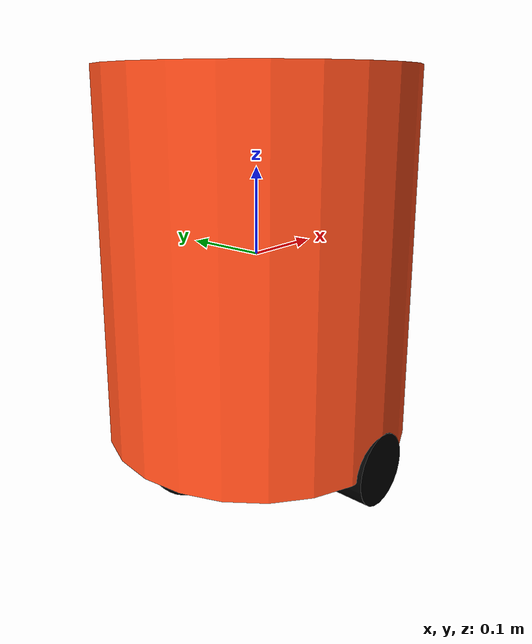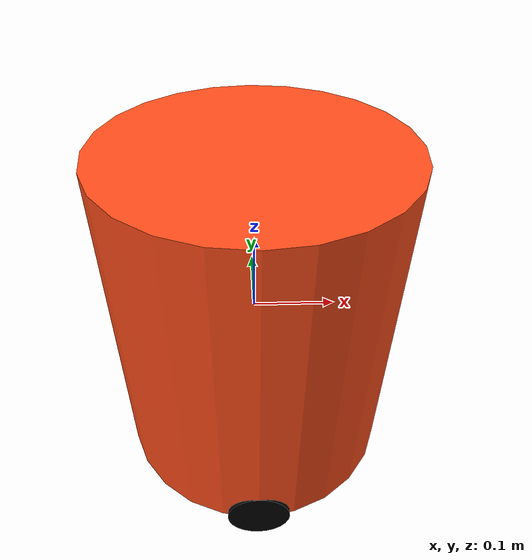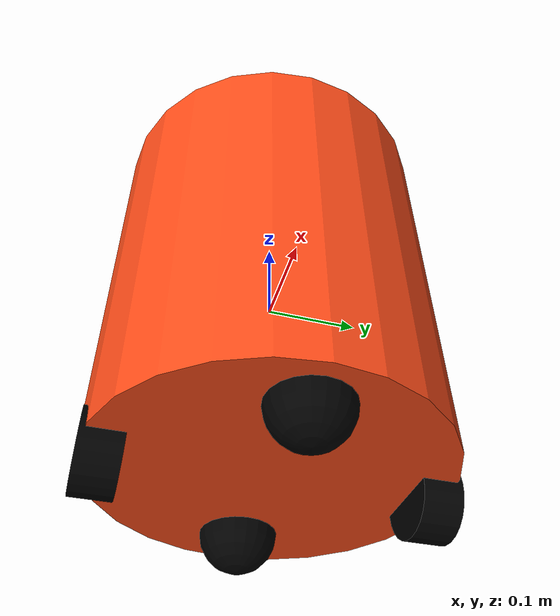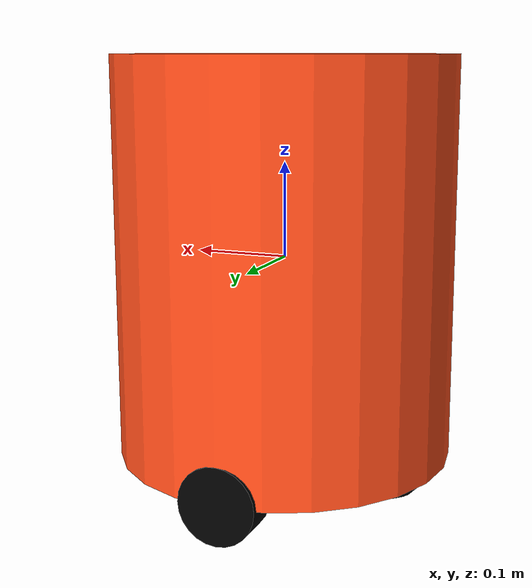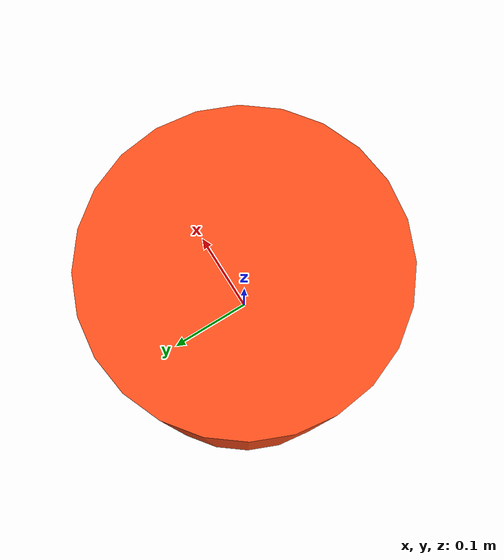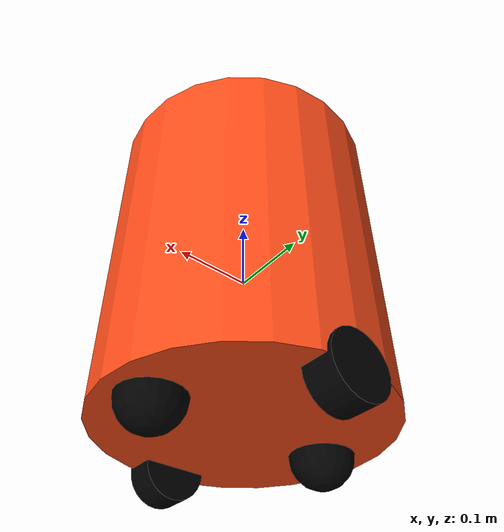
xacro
<?xml version="1.0"?>
<robot xmlns:xacro="http://www.ros.org/wiki/xacro">

	<xacro:include filename="inertial_macros.xacro" />

    <material name="white">
		<color rgba="1 1 1 1" />
    </material>

    <material name="red">
		<color rgba="1 0 0 1" />
    </material>

    <material name="orange">
		<color rgba="1 0.3 0.1 1" />
    </material>

    <material name="blue">
		<color rgba="0.2 0.2 1 1" />
    </material>

    <material name="black">
		<color rgba="0 0 0 1" />
    </material>

    <!-- BASE_LINK -->

    <link name="base_link_slave">
    </link>

	<link name="base_footprint_slave">
	</link>

	<joint name="base_footprint_joint_slave" type="fixed">
		<parent link="base_footprint_slave" />
		<child link="base_link_slave" />
		<origin xyz="0 0 0" rpy="0 0 0" />
	</joint>

    <!-- CHASSIS -->

    <link name="chassis_slave">
    	<visual>
			<origin xyz="0 0 0" />
    	    <geometry>
				<cylinder radius="0.177" length="0.420" />
    	    </geometry>
			<material name="orange" />
    	</visual>
    	<collision>
			<origin xyz="0 0 0" />
    	    <geometry>
				<cylinder radius="0.177" length="0.420" />
    	    </geometry>
    	</collision>
    	<xacro:inertial_cylinder mass="0.5" length="0.420" radius="0.177">
			<origin xyz="0 0 0" rpy="0 0 0" />
    	</xacro:inertial_cylinder>
    </link>

    <gazebo reference="chassis_slave">
        <material>Gazebo/Orange</material>
    </gazebo>

    <joint name="chassis_joint_slave" type="fixed">
		<parent link="base_link_slave" />
		<child link="chassis_slave" />
		<origin xyz="0 0 0" />
    </joint>

    <!-- LEFT_WHEEL -->

    <link name="left_wheel_slave">
    	<visual>
    	    <geometry>
				<cylinder radius="0.04" length="0.04" />
    	    </geometry>
			<material name="black" />
    	</visual>
    	<collision>
    	    <geometry>
				<cylinder radius="0.04" length="0.04" />
    	    </geometry>
    	</collision>
    	<xacro:inertial_cylinder mass="0.1" length="0.04" radius="0.04">
			<origin xyz="0 0 0" rpy="0 0 0" />
    	</xacro:inertial_cylinder>
    </link>

    <gazebo reference="left_wheel_slave">
        <material>Gazebo/Black</material>
    </gazebo>

    <joint name="left_wheel_joint_slave" type="continuous">
		<parent link="chassis_slave" />
		<child link="left_wheel_slave" />
		<origin xyz="0 0.157 -0.210" rpy="-${pi/2} 0 0" />
		<axis xyz="0 0 1" />
    </joint>

    <!-- RIGHT_WHEEL -->

    <link name="right_wheel_slave">
    	<visual>
    	    <geometry>
				<cylinder radius="0.04" length="0.04" />
    	    </geometry>
			<material name="black" />
    	</visual>
    	<collision>
    	    <geometry>
				<cylinder radius="0.04" length="0.04" />
    	    </geometry>
    	</collision>
    	<xacro:inertial_cylinder mass="0.1" length="0.04" radius="0.04">
			<origin xyz="0 0 0" rpy="0 0 0" />
    	</xacro:inertial_cylinder>
    </link>

    <gazebo reference="right_wheel_slave">
        <material>Gazebo/Black</material>
    </gazebo>

    <joint name="right_wheel_joint_slave" type="continuous">
		<parent link="base_link_slave" />
		<child link="right_wheel_slave" />
		<origin xyz="0 -0.157 -0.210" rpy="${pi/2} 0 0" />
		<axis xyz="0 0 -1" />
    </joint>

    <!-- CASTER WHEEL -->

    <link name="caster_wheel_forward_slave">
        <visual>
            <geometry>
				<sphere radius="0.04" />
    	    </geometry>
			<material name="black" />
    	</visual>
    	<collision>
            <geometry>
				<sphere radius="0.04" />
    	    </geometry>
    	</collision>
    	<xacro:inertial_sphere mass="0.1" radius="0.04">
			<origin xyz="0 0 0" rpy="0 0 0" />
    	</xacro:inertial_sphere>
    </link>

    <gazebo reference="caster_wheel_forward_slave">
        <material>Gazebo/Black</material>
		<mu1 value="0.001" />
		<mu2 value="0.001" />
    </gazebo>

    <joint name="caster_wheel_forward_joint_slave" type="fixed">
		<parent link="chassis_slave" />
		<child link="caster_wheel_forward_slave" />
		<origin xyz="0.12 0 -0.210" />
    </joint>

	<link name="caster_wheel_backward_slave">
		<visual>
			<geometry>
				<sphere radius="0.04" />
			</geometry>
			<material name="black" />
		</visual>
		<collision>
			<geometry>
				<sphere radius="0.04" />
			</geometry>
		</collision>
		<xacro:inertial_sphere mass="0.1" radius="0.04">
			<origin xyz="0 0 0" rpy="0 0 0" />
		</xacro:inertial_sphere>
	</link>

	<gazebo reference="caster_wheel_backward_slave">
		<material>Gazebo/Black</material>
		<mu1 value="0.001" />
		<mu2 value="0.001" />
	</gazebo>

	<joint name="caster_wheel_backward_joint_slave" type="fixed">
		<parent link="chassis_slave" />
		<child link="caster_wheel_backward_slave" />
		<origin xyz="-0.12 0 -0.210" />
	</joint>

</robot>
